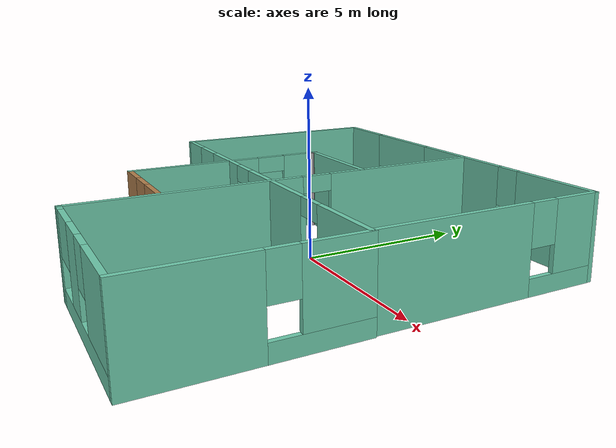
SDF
<?xml version='1.0'?>
<sdf version='1.6'>
  <model name='house'>
    <pose frame=''>-0.877552 -0.554861 0 0 -0 0</pose>
    <link name='Wall_0'>
      <collision name='Wall_0_Collision'>
        <geometry>
          <box>
            <size>7 0.15 2.5</size>
          </box>
        </geometry>
        <pose frame=''>0 0 1.25 0 -0 0</pose>
      </collision>
      <visual name='Wall_0_Visual'>
        <pose frame=''>0 0 1.25 0 -0 0</pose>
        <geometry>
          <box>
            <size>7 0.15 2.5</size>
          </box>
        </geometry>
        <material>
          <script>
            <uri>file://media/materials/scripts/gazebo.material</uri>
            <name>Gazebo/Grey</name>
          </script>
          <ambient>0.435294 0.796078 0.67451 1</ambient>
        </material>
        <meta>
          <layer>0</layer>
        </meta>
      </visual>
      <pose frame=''>-6.19953 2.7899 0 0 0 -1.5708</pose>
    </link>
    <link name='Wall_1'>
      <pose frame=''>-0.024526 -0.635099 0 0 -0 0</pose>
      <visual name='Wall_1_Visual_0'>
        <pose frame=''>-5.57633 0 1.25 0 -0 0</pose>
        <geometry>
          <box>
            <size>1.34734 0.15 2.5</size>
          </box>
        </geometry>
        <material>
          <script>
            <uri>file://media/materials/scripts/gazebo.material</uri>
            <name>Gazebo/Grey</name>
          </script>
          <ambient>0.435294 0.796078 0.67451 1</ambient>
        </material>
        <meta>
          <layer>0</layer>
        </meta>
      </visual>
      <collision name='Wall_1_Collision_0'>
        <geometry>
          <box>
            <size>1.34734 0.15 2.5</size>
          </box>
        </geometry>
        <pose frame=''>-5.57633 0 1.25 0 -0 0</pose>
      </collision>
      <visual name='Wall_1_Visual_1'>
        <pose frame=''>1.13789 0 1.25 0 -0 0</pose>
        <geometry>
          <box>
            <size>3.49001 0.15 2.5</size>
          </box>
        </geometry>
        <material>
          <script>
            <uri>file://media/materials/scripts/gazebo.material</uri>
            <name>Gazebo/Grey</name>
          </script>
          <ambient>0.435294 0.796078 0.67451 1</ambient>
        </material>
        <meta>
          <layer>0</layer>
        </meta>
      </visual>
      <collision name='Wall_1_Collision_1'>
        <geometry>
          <box>
            <size>3.49001 0.15 2.5</size>
          </box>
        </geometry>
        <pose frame=''>1.13789 0 1.25 0 -0 0</pose>
      </collision>
      <visual name='Wall_1_Visual_2'>
        <pose frame=''>5.01645 0 1.25 0 -0 0</pose>
        <geometry>
          <box>
            <size>2.46711 0.15 2.5</size>
          </box>
        </geometry>
        <material>
          <script>
            <uri>file://media/materials/scripts/gazebo.material</uri>
            <name>Gazebo/Grey</name>
          </script>
          <ambient>0.435294 0.796078 0.67451 1</ambient>
        </material>
        <meta>
          <layer>0</layer>
        </meta>
      </visual>
      <collision name='Wall_1_Collision_2'>
        <geometry>
          <box>
            <size>2.46711 0.15 2.5</size>
          </box>
        </geometry>
        <pose frame=''>5.01645 0 1.25 0 -0 0</pose>
      </collision>
      <visual name='Wall_1_Visual_3'>
        <pose frame=''>-3.20489 0 0.25 0 -0 0</pose>
        <geometry>
          <box>
            <size>3.39554 0.15 0.5</size>
          </box>
        </geometry>
        <material>
          <script>
            <uri>file://media/materials/scripts/gazebo.material</uri>
            <name>Gazebo/Grey</name>
          </script>
          <ambient>0.435294 0.796078 0.67451 1</ambient>
        </material>
        <meta>
          <layer>0</layer>
        </meta>
      </visual>
      <collision name='Wall_1_Collision_3'>
        <geometry>
          <box>
            <size>3.39554 0.15 0.5</size>
          </box>
        </geometry>
        <pose frame=''>-3.20489 0 0.25 0 -0 0</pose>
      </collision>
      <visual name='Wall_1_Visual_4'>
        <pose frame=''>-2.57752 0 1.5 0 -0 0</pose>
        <geometry>
          <box>
            <size>2.1408 0.15 2</size>
          </box>
        </geometry>
        <material>
          <script>
            <uri>file://media/materials/scripts/gazebo.material</uri>
            <name>Gazebo/Grey</name>
          </script>
          <ambient>0.435294 0.796078 0.67451 1</ambient>
        </material>
        <meta>
          <layer>0</layer>
        </meta>
      </visual>
      <collision name='Wall_1_Collision_4'>
        <geometry>
          <box>
            <size>2.1408 0.15 2</size>
          </box>
        </geometry>
        <pose frame=''>-2.57752 0 1.5 0 -0 0</pose>
      </collision>
      <visual name='Wall_1_Visual_5'>
        <pose frame=''>-4.27529 0 1.9 0 -0 0</pose>
        <geometry>
          <box>
            <size>1.25474 0.15 1.2</size>
          </box>
        </geometry>
        <material>
          <script>
            <uri>file://media/materials/scripts/gazebo.material</uri>
            <name>Gazebo/Grey</name>
          </script>
          <ambient>0.435294 0.796078 0.67451 1</ambient>
        </material>
        <meta>
          <layer>0</layer>
        </meta>
      </visual>
      <collision name='Wall_1_Collision_5'>
        <geometry>
          <box>
            <size>1.25474 0.15 1.2</size>
          </box>
        </geometry>
        <pose frame=''>-4.27529 0 1.9 0 -0 0</pose>
      </collision>
      <visual name='Wall_1_Visual_6'>
        <pose frame=''>3.33289 0 2.25 0 -0 0</pose>
        <geometry>
          <box>
            <size>0.9 0.15 0.5</size>
          </box>
        </geometry>
        <material>
          <script>
            <uri>file://media/materials/scripts/gazebo.material</uri>
            <name>Gazebo/Grey</name>
          </script>
          <ambient>0.435294 0.796078 0.67451 1</ambient>
        </material>
        <meta>
          <layer>0</layer>
        </meta>
      </visual>
      <collision name='Wall_1_Collision_6'>
        <geometry>
          <box>
            <size>0.9 0.15 0.5</size>
          </box>
        </geometry>
        <pose frame=''>3.33289 0 2.25 0 -0 0</pose>
      </collision>
      <visual name='Wall_1_Visual_7'>
        <pose frame=''>-1.05712 0 2.25 0 -0 0</pose>
        <geometry>
          <box>
            <size>0.9 0.15 0.5</size>
          </box>
        </geometry>
        <material>
          <script>
            <uri>file://media/materials/scripts/gazebo.material</uri>
            <name>Gazebo/Grey</name>
          </script>
          <ambient>0.435294 0.796078 0.67451 1</ambient>
        </material>
        <meta>
          <layer>0</layer>
        </meta>
      </visual>
      <collision name='Wall_1_Collision_7'>
        <geometry>
          <box>
            <size>0.9 0.15 0.5</size>
          </box>
        </geometry>
        <pose frame=''>-1.05712 0 2.25 0 -0 0</pose>
      </collision>
    </link>
    <link name='Wall_10'>
      <pose frame=''>-0.712697 -3.76873 0 0 -0 0</pose>
      <visual name='Wall_10_Visual_0'>
        <pose frame=''>-1.0908 0 1.25 0 -0 0</pose>
        <geometry>
          <box>
            <size>1.06841 0.15 2.5</size>
          </box>
        </geometry>
        <material>
          <script>
            <uri>file://media/materials/scripts/gazebo.material</uri>
            <name>Gazebo/Wood</name>
          </script>
          <ambient>0.435294 0.796078 0.67451 1</ambient>
        </material>
        <meta>
          <layer>0</layer>
        </meta>
      </visual>
      <collision name='Wall_10_Collision_0'>
        <geometry>
          <box>
            <size>1.06841 0.15 2.5</size>
          </box>
        </geometry>
        <pose frame=''>-1.0908 0 1.25 0 -0 0</pose>
      </collision>
      <visual name='Wall_10_Visual_1'>
        <pose frame=''>0.984203 0 1.25 0 -0 0</pose>
        <geometry>
          <box>
            <size>1.2816 0.15 2.5</size>
          </box>
        </geometry>
        <material>
          <script>
            <uri>file://media/materials/scripts/gazebo.material</uri>
            <name>Gazebo/Wood</name>
          </script>
          <ambient>0.435294 0.796078 0.67451 1</ambient>
        </material>
        <meta>
          <layer>0</layer>
        </meta>
      </visual>
      <collision name='Wall_10_Collision_1'>
        <geometry>
          <box>
            <size>1.2816 0.15 2.5</size>
          </box>
        </geometry>
        <pose frame=''>0.984203 0 1.25 0 -0 0</pose>
      </collision>
      <visual name='Wall_10_Visual_2'>
        <pose frame=''>-0.106595 0 2.25 0 -0 0</pose>
        <geometry>
          <box>
            <size>0.9 0.15 0.5</size>
          </box>
        </geometry>
        <material>
          <script>
            <uri>file://media/materials/scripts/gazebo.material</uri>
            <name>Gazebo/Wood</name>
          </script>
          <ambient>0.435294 0.796078 0.67451 1</ambient>
        </material>
        <meta>
          <layer>0</layer>
        </meta>
      </visual>
      <collision name='Wall_10_Collision_2'>
        <geometry>
          <box>
            <size>0.9 0.15 0.5</size>
          </box>
        </geometry>
        <pose frame=''>-0.106595 0 2.25 0 -0 0</pose>
      </collision>
    </link>
    <link name='Wall_12'>
      <collision name='Wall_12_Collision'>
        <geometry>
          <box>
            <size>0.289231 0.15 2.5</size>
          </box>
        </geometry>
        <pose frame=''>0 0 1.25 0 -0 0</pose>
      </collision>
      <visual name='Wall_12_Visual'>
        <pose frame=''>0 0 1.25 0 -0 0</pose>
        <geometry>
          <box>
            <size>0.289231 0.15 2.5</size>
          </box>
        </geometry>
        <material>
          <script>
            <uri>file://media/materials/scripts/gazebo.material</uri>
            <name>Gazebo/Grey</name>
          </script>
          <ambient>1 1 1 1</ambient>
        </material>
        <meta>
          <layer>0</layer>
        </meta>
      </visual>
      <pose frame=''>-2.2178 2.27807 0 0 0 -0.869805</pose>
    </link>
    <link name='Wall_14'>
      <collision name='Wall_14_Collision'>
        <geometry>
          <box>
            <size>3.25 0.15 2.5</size>
          </box>
        </geometry>
        <pose frame=''>0 0 1.25 0 -0 0</pose>
      </collision>
      <visual name='Wall_14_Visual'>
        <pose frame=''>0 0 1.25 0 -0 0</pose>
        <geometry>
          <box>
            <size>3.25 0.15 2.5</size>
          </box>
        </geometry>
        <material>
          <script>
            <uri>file://media/materials/scripts/gazebo.material</uri>
            <name>Gazebo/Grey</name>
          </script>
          <ambient>0.435294 0.796078 0.67451 1</ambient>
        </material>
        <meta>
          <layer>0</layer>
        </meta>
      </visual>
      <pose frame=''>-0.712697 2.33127 0 0 -0 0</pose>
    </link>
    <link name='Wall_2'>
      <pose frame=''>6.15047 2.7899 0 0 -0 1.5708</pose>
      <visual name='Wall_2_Visual_0'>
        <pose frame=''>-1.13268 0 1.25 0 -0 0</pose>
        <geometry>
          <box>
            <size>4.73463 0.15 2.5</size>
          </box>
        </geometry>
        <material>
          <script>
            <uri>file://media/materials/scripts/gazebo.material</uri>
            <name>Gazebo/Grey</name>
          </script>
          <ambient>0.435294 0.796078 0.67451 1</ambient>
        </material>
        <meta>
          <layer>0</layer>
        </meta>
      </visual>
      <collision name='Wall_2_Collision_0'>
        <geometry>
          <box>
            <size>4.73463 0.15 2.5</size>
          </box>
        </geometry>
        <pose frame=''>-1.13268 0 1.25 0 -0 0</pose>
      </collision>
      <visual name='Wall_2_Visual_1'>
        <pose frame=''>2.36732 0 0.25 0 -0 0</pose>
        <geometry>
          <box>
            <size>2.26537 0.15 0.5</size>
          </box>
        </geometry>
        <material>
          <script>
            <uri>file://media/materials/scripts/gazebo.material</uri>
            <name>Gazebo/Grey</name>
          </script>
          <ambient>0.435294 0.796078 0.67451 1</ambient>
        </material>
        <meta>
          <layer>0</layer>
        </meta>
      </visual>
      <collision name='Wall_2_Collision_1'>
        <geometry>
          <box>
            <size>2.26537 0.15 0.5</size>
          </box>
        </geometry>
        <pose frame=''>2.36732 0 0.25 0 -0 0</pose>
      </collision>
      <visual name='Wall_2_Visual_2'>
        <pose frame=''>2.76731 0 1.5 0 -0 0</pose>
        <geometry>
          <box>
            <size>1.46537 0.15 2</size>
          </box>
        </geometry>
        <material>
          <script>
            <uri>file://media/materials/scripts/gazebo.material</uri>
            <name>Gazebo/Grey</name>
          </script>
          <ambient>0.435294 0.796078 0.67451 1</ambient>
        </material>
        <meta>
          <layer>0</layer>
        </meta>
      </visual>
      <collision name='Wall_2_Collision_2'>
        <geometry>
          <box>
            <size>1.46537 0.15 2</size>
          </box>
        </geometry>
        <pose frame=''>2.76731 0 1.5 0 -0 0</pose>
      </collision>
      <visual name='Wall_2_Visual_3'>
        <pose frame=''>1.63463 0 1.9 0 -0 0</pose>
        <geometry>
          <box>
            <size>0.8 0.15 1.2</size>
          </box>
        </geometry>
        <material>
          <script>
            <uri>file://media/materials/scripts/gazebo.material</uri>
            <name>Gazebo/Grey</name>
          </script>
          <ambient>0.435294 0.796078 0.67451 1</ambient>
        </material>
        <meta>
          <layer>0</layer>
        </meta>
      </visual>
      <collision name='Wall_2_Collision_3'>
        <geometry>
          <box>
            <size>0.8 0.15 1.2</size>
          </box>
        </geometry>
        <pose frame=''>1.63463 0 1.9 0 -0 0</pose>
      </collision>
    </link>
    <link name='Wall_3'>
      <pose frame=''>-0.024526 6.2149 0 0 -0 3.14159</pose>
      <visual name='Wall_3_Visual_0'>
        <pose frame=''>-4.8078 0 1.25 0 -0 0</pose>
        <geometry>
          <box>
            <size>2.8844 0.15 2.5</size>
          </box>
        </geometry>
        <material>
          <script>
            <uri>file://media/materials/scripts/gazebo.material</uri>
            <name>Gazebo/Grey</name>
          </script>
          <ambient>0.435294 0.796078 0.67451 1</ambient>
        </material>
        <meta>
          <layer>0</layer>
        </meta>
      </visual>
      <collision name='Wall_3_Collision_0'>
        <geometry>
          <box>
            <size>2.8844 0.15 2.5</size>
          </box>
        </geometry>
        <pose frame=''>-4.8078 0 1.25 0 -0 0</pose>
      </collision>
      <visual name='Wall_3_Visual_1'>
        <pose frame=''>1.4422 0 0.25 0 -0 0</pose>
        <geometry>
          <box>
            <size>9.6156 0.15 0.5</size>
          </box>
        </geometry>
        <material>
          <script>
            <uri>file://media/materials/scripts/gazebo.material</uri>
            <name>Gazebo/Grey</name>
          </script>
          <ambient>0.435294 0.796078 0.67451 1</ambient>
        </material>
        <meta>
          <layer>0</layer>
        </meta>
      </visual>
      <collision name='Wall_3_Collision_1'>
        <geometry>
          <box>
            <size>9.6156 0.15 0.5</size>
          </box>
        </geometry>
        <pose frame=''>1.4422 0 0.25 0 -0 0</pose>
      </collision>
      <visual name='Wall_3_Visual_2'>
        <pose frame=''>-0.6744 0 1.5 0 -0 0</pose>
        <geometry>
          <box>
            <size>3.7824 0.15 2</size>
          </box>
        </geometry>
        <material>
          <script>
            <uri>file://media/materials/scripts/gazebo.material</uri>
            <name>Gazebo/Grey</name>
          </script>
          <ambient>0.435294 0.796078 0.67451 1</ambient>
        </material>
        <meta>
          <layer>0</layer>
        </meta>
      </visual>
      <collision name='Wall_3_Collision_2'>
        <geometry>
          <box>
            <size>3.7824 0.15 2</size>
          </box>
        </geometry>
        <pose frame=''>-0.6744 0 1.5 0 -0 0</pose>
      </collision>
      <visual name='Wall_3_Visual_3'>
        <pose frame=''>5.19155 0 1.5 0 -0 0</pose>
        <geometry>
          <box>
            <size>2.1169 0.15 2</size>
          </box>
        </geometry>
        <material>
          <script>
            <uri>file://media/materials/scripts/gazebo.material</uri>
            <name>Gazebo/Grey</name>
          </script>
          <ambient>0.435294 0.796078 0.67451 1</ambient>
        </material>
        <meta>
          <layer>0</layer>
        </meta>
      </visual>
      <collision name='Wall_3_Collision_3'>
        <geometry>
          <box>
            <size>2.1169 0.15 2</size>
          </box>
        </geometry>
        <pose frame=''>5.19155 0 1.5 0 -0 0</pose>
      </collision>
      <visual name='Wall_3_Visual_4'>
        <pose frame=''>-2.9656 0 1.9 0 -0 0</pose>
        <geometry>
          <box>
            <size>0.8 0.15 1.2</size>
          </box>
        </geometry>
        <material>
          <script>
            <uri>file://media/materials/scripts/gazebo.material</uri>
            <name>Gazebo/Grey</name>
          </script>
          <ambient>0.435294 0.796078 0.67451 1</ambient>
        </material>
        <meta>
          <layer>0</layer>
        </meta>
      </visual>
      <collision name='Wall_3_Collision_4'>
        <geometry>
          <box>
            <size>0.8 0.15 1.2</size>
          </box>
        </geometry>
        <pose frame=''>-2.9656 0 1.9 0 -0 0</pose>
      </collision>
      <visual name='Wall_3_Visual_5'>
        <pose frame=''>2.67495 0 1.9 0 -0 0</pose>
        <geometry>
          <box>
            <size>2.9163 0.15 1.2</size>
          </box>
        </geometry>
        <material>
          <script>
            <uri>file://media/materials/scripts/gazebo.material</uri>
            <name>Gazebo/Grey</name>
          </script>
          <ambient>0.435294 0.796078 0.67451 1</ambient>
        </material>
        <meta>
          <layer>0</layer>
        </meta>
      </visual>
      <collision name='Wall_3_Collision_5'>
        <geometry>
          <box>
            <size>2.9163 0.15 1.2</size>
          </box>
        </geometry>
        <pose frame=''>2.67495 0 1.9 0 -0 0</pose>
      </collision>
    </link>
    <link name='Wall_5'>
      <pose frame=''>0.849526 -0.0399 0 0 0 -1.5708</pose>
      <visual name='Wall_5_Visual_0'>
        <pose frame=''>-3.76325 0 1.25 0 -0 0</pose>
        <geometry>
          <box>
            <size>4.9735 0.15 2.5</size>
          </box>
        </geometry>
        <material>
          <script>
            <uri>file://media/materials/scripts/gazebo.material</uri>
            <name>Gazebo/Grey</name>
          </script>
          <ambient>0.435294 0.796078 0.67451 1</ambient>
        </material>
        <meta>
          <layer>0</layer>
        </meta>
      </visual>
      <collision name='Wall_5_Collision_0'>
        <geometry>
          <box>
            <size>4.9735 0.15 2.5</size>
          </box>
        </geometry>
        <pose frame=''>-3.76325 0 1.25 0 -0 0</pose>
      </collision>
      <visual name='Wall_5_Visual_1'>
        <pose frame=''>2.93675 0 1.25 0 -0 0</pose>
        <geometry>
          <box>
            <size>6.6265 0.15 2.5</size>
          </box>
        </geometry>
        <material>
          <script>
            <uri>file://media/materials/scripts/gazebo.material</uri>
            <name>Gazebo/Grey</name>
          </script>
          <ambient>0.435294 0.796078 0.67451 1</ambient>
        </material>
        <meta>
          <layer>0</layer>
        </meta>
      </visual>
      <collision name='Wall_5_Collision_1'>
        <geometry>
          <box>
            <size>6.6265 0.15 2.5</size>
          </box>
        </geometry>
        <pose frame=''>2.93675 0 1.25 0 -0 0</pose>
      </collision>
      <visual name='Wall_5_Visual_2'>
        <pose frame=''>-0.826498 0 2.25 0 -0 0</pose>
        <geometry>
          <box>
            <size>0.9 0.15 0.5</size>
          </box>
        </geometry>
        <material>
          <script>
            <uri>file://media/materials/scripts/gazebo.material</uri>
            <name>Gazebo/Grey</name>
          </script>
          <ambient>0.435294 0.796078 0.67451 1</ambient>
        </material>
        <meta>
          <layer>0</layer>
        </meta>
      </visual>
      <collision name='Wall_5_Collision_2'>
        <geometry>
          <box>
            <size>0.9 0.15 0.5</size>
          </box>
        </geometry>
        <pose frame=''>-0.826498 0 2.25 0 -0 0</pose>
      </collision>
    </link>
    <link name='Wall_6'>
      <pose frame=''>3.52453 -6.2149 0 0 -0 0</pose>
      <visual name='Wall_6_Visual_0'>
        <pose frame=''>-2.54884 0 1.25 0 -0 0</pose>
        <geometry>
          <box>
            <size>0.402321 0.15 2.5</size>
          </box>
        </geometry>
        <material>
          <script>
            <uri>file://media/materials/scripts/gazebo.material</uri>
            <name>Gazebo/Grey</name>
          </script>
          <ambient>0.435294 0.796078 0.67451 1</ambient>
        </material>
        <meta>
          <layer>0</layer>
        </meta>
      </visual>
      <collision name='Wall_6_Collision_0'>
        <geometry>
          <box>
            <size>0.402321 0.15 2.5</size>
          </box>
        </geometry>
        <pose frame=''>-2.54884 0 1.25 0 -0 0</pose>
      </collision>
      <visual name='Wall_6_Visual_1'>
        <pose frame=''>0.20116 0 0.25 0 -0 0</pose>
        <geometry>
          <box>
            <size>5.09768 0.15 0.5</size>
          </box>
        </geometry>
        <material>
          <script>
            <uri>file://media/materials/scripts/gazebo.material</uri>
            <name>Gazebo/Grey</name>
          </script>
          <ambient>0.435294 0.796078 0.67451 1</ambient>
        </material>
        <meta>
          <layer>0</layer>
        </meta>
      </visual>
      <collision name='Wall_6_Collision_1'>
        <geometry>
          <box>
            <size>5.09768 0.15 0.5</size>
          </box>
        </geometry>
        <pose frame=''>0.20116 0 0.25 0 -0 0</pose>
      </collision>
      <visual name='Wall_6_Visual_2'>
        <pose frame=''>-0.644669 0 1.5 0 -0 0</pose>
        <geometry>
          <box>
            <size>1.03646 0.15 2</size>
          </box>
        </geometry>
        <material>
          <script>
            <uri>file://media/materials/scripts/gazebo.material</uri>
            <name>Gazebo/Grey</name>
          </script>
          <ambient>0.435294 0.796078 0.67451 1</ambient>
        </material>
        <meta>
          <layer>0</layer>
        </meta>
      </visual>
      <collision name='Wall_6_Collision_2'>
        <geometry>
          <box>
            <size>1.03646 0.15 2</size>
          </box>
        </geometry>
        <pose frame=''>-0.644669 0 1.5 0 -0 0</pose>
      </collision>
      <visual name='Wall_6_Visual_3'>
        <pose frame=''>1.71178 0 1.5 0 -0 0</pose>
        <geometry>
          <box>
            <size>2.07644 0.15 2</size>
          </box>
        </geometry>
        <material>
          <script>
            <uri>file://media/materials/scripts/gazebo.material</uri>
            <name>Gazebo/Grey</name>
          </script>
          <ambient>0.435294 0.796078 0.67451 1</ambient>
        </material>
        <meta>
          <layer>0</layer>
        </meta>
      </visual>
      <collision name='Wall_6_Collision_3'>
        <geometry>
          <box>
            <size>2.07644 0.15 2</size>
          </box>
        </geometry>
        <pose frame=''>1.71178 0 1.5 0 -0 0</pose>
      </collision>
      <visual name='Wall_6_Visual_4'>
        <pose frame=''>-1.75529 0 1.9 0 -0 0</pose>
        <geometry>
          <box>
            <size>1.18478 0.15 1.2</size>
          </box>
        </geometry>
        <material>
          <script>
            <uri>file://media/materials/scripts/gazebo.material</uri>
            <name>Gazebo/Grey</name>
          </script>
          <ambient>0.435294 0.796078 0.67451 1</ambient>
        </material>
        <meta>
          <layer>0</layer>
        </meta>
      </visual>
      <collision name='Wall_6_Collision_4'>
        <geometry>
          <box>
            <size>1.18478 0.15 1.2</size>
          </box>
        </geometry>
        <pose frame=''>-1.75529 0 1.9 0 -0 0</pose>
      </collision>
      <visual name='Wall_6_Visual_5'>
        <pose frame=''>0.273559 0 1.9 0 -0 0</pose>
        <geometry>
          <box>
            <size>0.8 0.15 1.2</size>
          </box>
        </geometry>
        <material>
          <script>
            <uri>file://media/materials/scripts/gazebo.material</uri>
            <name>Gazebo/Grey</name>
          </script>
          <ambient>0.435294 0.796078 0.67451 1</ambient>
        </material>
        <meta>
          <layer>0</layer>
        </meta>
      </visual>
      <collision name='Wall_6_Collision_5'>
        <geometry>
          <box>
            <size>0.8 0.15 1.2</size>
          </box>
        </geometry>
        <pose frame=''>0.273559 0 1.9 0 -0 0</pose>
      </collision>
    </link>
    <link name='Wall_7'>
      <pose frame=''>6.19953 -3.4149 0 0 -0 1.5708</pose>
      <visual name='Wall_7_Visual_0'>
        <pose frame=''>-1.31199 0 1.25 0 -0 0</pose>
        <geometry>
          <box>
            <size>3.12602 0.15 2.5</size>
          </box>
        </geometry>
        <material>
          <script>
            <uri>file://media/materials/scripts/gazebo.material</uri>
            <name>Gazebo/Grey</name>
          </script>
          <ambient>0.435294 0.796078 0.67451 1</ambient>
        </material>
        <meta>
          <layer>0</layer>
        </meta>
      </visual>
      <collision name='Wall_7_Collision_0'>
        <geometry>
          <box>
            <size>3.12602 0.15 2.5</size>
          </box>
        </geometry>
        <pose frame=''>-1.31199 0 1.25 0 -0 0</pose>
      </collision>
      <visual name='Wall_7_Visual_1'>
        <pose frame=''>1.56301 0 0.25 0 -0 0</pose>
        <geometry>
          <box>
            <size>2.62398 0.15 0.5</size>
          </box>
        </geometry>
        <material>
          <script>
            <uri>file://media/materials/scripts/gazebo.material</uri>
            <name>Gazebo/Grey</name>
          </script>
          <ambient>0.435294 0.796078 0.67451 1</ambient>
        </material>
        <meta>
          <layer>0</layer>
        </meta>
      </visual>
      <collision name='Wall_7_Collision_1'>
        <geometry>
          <box>
            <size>2.62398 0.15 0.5</size>
          </box>
        </geometry>
        <pose frame=''>1.56301 0 0.25 0 -0 0</pose>
      </collision>
      <visual name='Wall_7_Visual_2'>
        <pose frame=''>1.96301 0 1.5 0 -0 0</pose>
        <geometry>
          <box>
            <size>1.82398 0.15 2</size>
          </box>
        </geometry>
        <material>
          <script>
            <uri>file://media/materials/scripts/gazebo.material</uri>
            <name>Gazebo/Grey</name>
          </script>
          <ambient>0.435294 0.796078 0.67451 1</ambient>
        </material>
        <meta>
          <layer>0</layer>
        </meta>
      </visual>
      <collision name='Wall_7_Collision_2'>
        <geometry>
          <box>
            <size>1.82398 0.15 2</size>
          </box>
        </geometry>
        <pose frame=''>1.96301 0 1.5 0 -0 0</pose>
      </collision>
      <visual name='Wall_7_Visual_3'>
        <pose frame=''>0.651015 0 1.9 0 -0 0</pose>
        <geometry>
          <box>
            <size>0.8 0.15 1.2</size>
          </box>
        </geometry>
        <material>
          <script>
            <uri>file://media/materials/scripts/gazebo.material</uri>
            <name>Gazebo/Grey</name>
          </script>
          <ambient>0.435294 0.796078 0.67451 1</ambient>
        </material>
        <meta>
          <layer>0</layer>
        </meta>
      </visual>
      <collision name='Wall_7_Collision_3'>
        <geometry>
          <box>
            <size>0.8 0.15 1.2</size>
          </box>
        </geometry>
        <pose frame=''>0.651015 0 1.9 0 -0 0</pose>
      </collision>
    </link>
    <link name='Wall_9'>
      <pose frame=''>-2.2627 -0.718728 0 0 0 -1.5708</pose>
      <visual name='Wall_9_Visual_0'>
        <pose frame=''>-2.51393 0 1.25 0 -0 0</pose>
        <geometry>
          <box>
            <size>1.22214 0.15 2.5</size>
          </box>
        </geometry>
        <material>
          <script>
            <uri>file://media/materials/scripts/gazebo.material</uri>
            <name>Gazebo/Grey</name>
          </script>
          <ambient>0.435294 0.796078 0.67451 1</ambient>
        </material>
        <meta>
          <layer>0</layer>
        </meta>
      </visual>
      <collision name='Wall_9_Collision_0'>
        <geometry>
          <box>
            <size>1.22214 0.15 2.5</size>
          </box>
        </geometry>
        <pose frame=''>-2.51393 0 1.25 0 -0 0</pose>
      </collision>
      <visual name='Wall_9_Visual_1'>
        <pose frame=''>1.06107 0 1.25 0 -0 0</pose>
        <geometry>
          <box>
            <size>4.12786 0.15 2.5</size>
          </box>
        </geometry>
        <material>
          <script>
            <uri>file://media/materials/scripts/gazebo.material</uri>
            <name>Gazebo/Grey</name>
          </script>
          <ambient>0.435294 0.796078 0.67451 1</ambient>
        </material>
        <meta>
          <layer>0</layer>
        </meta>
      </visual>
      <collision name='Wall_9_Collision_1'>
        <geometry>
          <box>
            <size>4.12786 0.15 2.5</size>
          </box>
        </geometry>
        <pose frame=''>1.06107 0 1.25 0 -0 0</pose>
      </collision>
      <visual name='Wall_9_Visual_2'>
        <pose frame=''>-1.45286 0 2.25 0 -0 0</pose>
        <geometry>
          <box>
            <size>0.9 0.15 0.5</size>
          </box>
        </geometry>
        <material>
          <script>
            <uri>file://media/materials/scripts/gazebo.material</uri>
            <name>Gazebo/Grey</name>
          </script>
          <ambient>0.435294 0.796078 0.67451 1</ambient>
        </material>
        <meta>
          <layer>0</layer>
        </meta>
      </visual>
      <collision name='Wall_9_Collision_2'>
        <geometry>
          <box>
            <size>0.9 0.15 0.5</size>
          </box>
        </geometry>
        <pose frame=''>-1.45286 0 2.25 0 -0 0</pose>
      </collision>
    </link>
    <static>1</static>
  </model>
</sdf>
